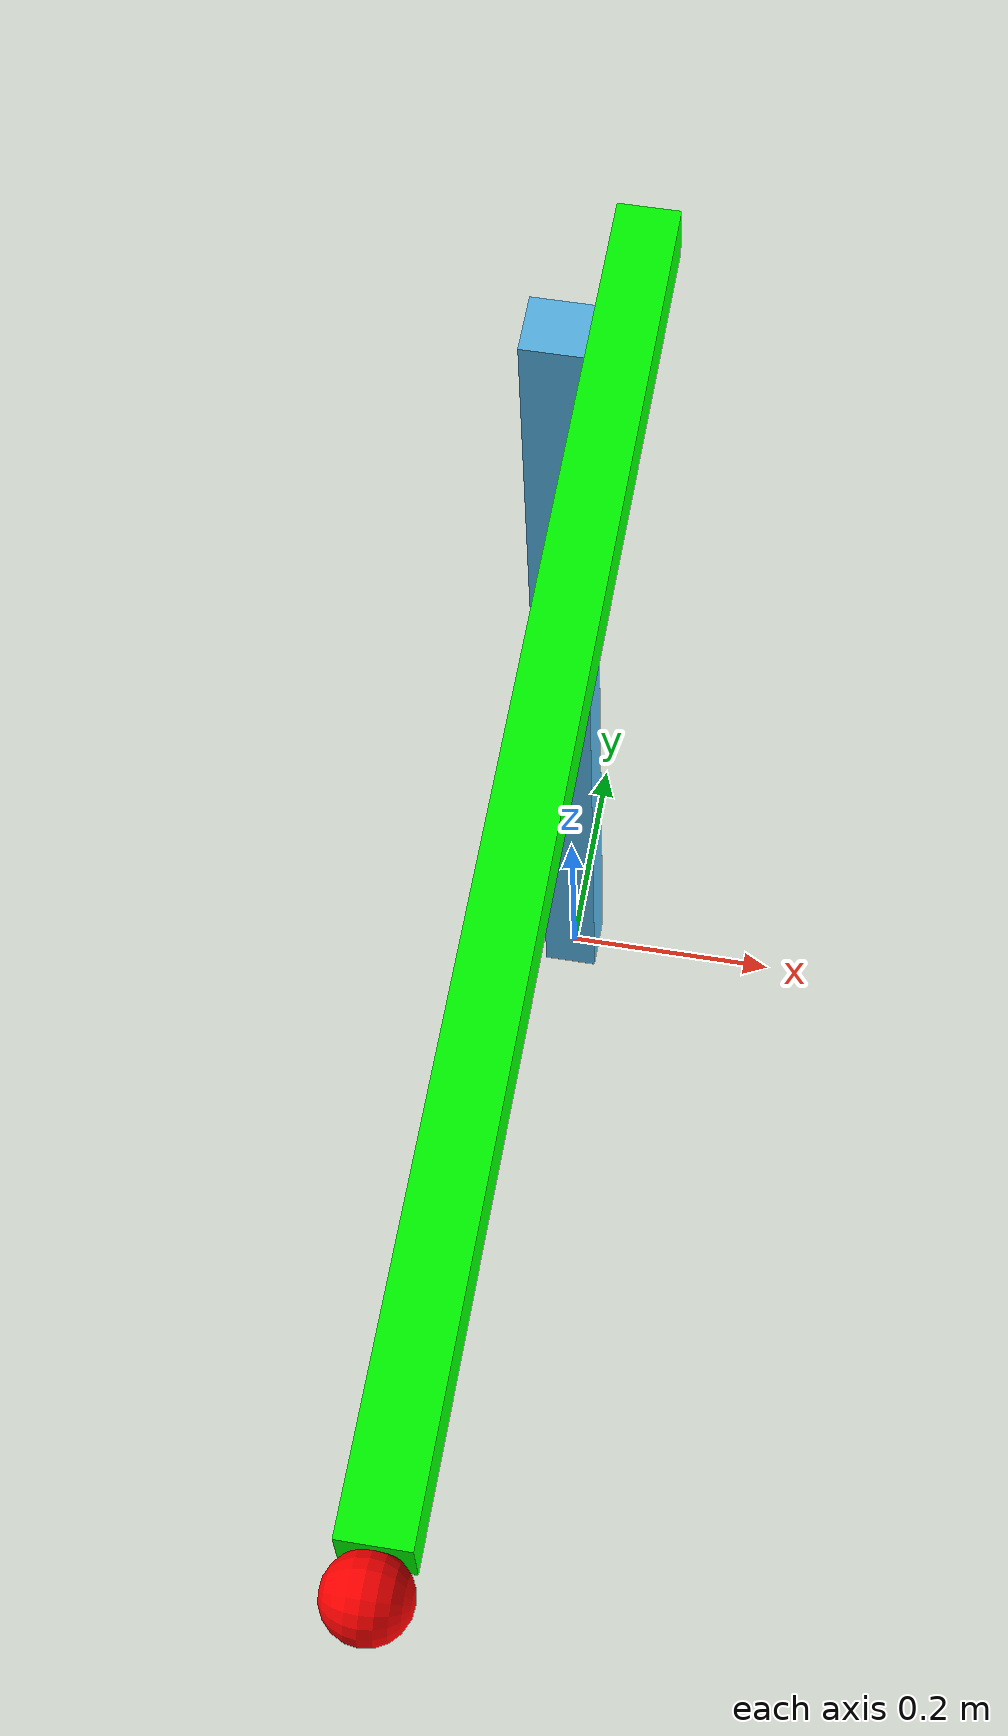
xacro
<?xml version="1.0"?>
<robot name="two_dof_robot" xmlns:xacro="http://ros.org/wiki/xacro">

  <!-- Base Link -->
  <link name="base"/>

  <!-- Joint 1 -->
  <joint name="joint1" type="revolute">
    <parent link="base"/>
    <child link="link1"/>
    <origin xyz="0 0 0.5" rpy="0 0 0"/>
    <axis xyz="0 0 1"/>
    <limit lower="-3.14" upper="3.14" effort="1.0" velocity="1.0"/>
  </joint>

  <!-- Link 1 -->
  <link name="link1">
    <visual>
      <origin xyz="0 0 0.0" rpy="0 0 0"/>
      <geometry>
        <box size="0.05 0.05 1"/>
      </geometry>
    </visual>
  </link>

  <!-- Joint 2 -->
  <joint name="joint2" type="revolute">
    <parent link="link1"/>
    <child link="link2"/>
    <origin xyz="0 0.05 0.525" rpy="0 1.5708 0"/>
    <axis xyz="0 0 1"/>
    <limit lower="-1.57" upper="1.57" effort="1.0" velocity="1.0"/>
  </joint>

  <!-- Link 2 -->
  <link name="link2">
    <visual>
      <origin xyz="0.05 -0.45 0.05" rpy="0 0 1.5708"/>
      <geometry>
        <box size="1.05 0.05 0.05"/>
      </geometry>
      <material name="green">
        <color rgba="0 1 0 1"/>
      </material>
    </visual>
  </link>

  <!-- Joint to End Effector (fixed) -->
  <joint name="joint_ee" type="fixed">
    <parent link="link2"/>
    <child link="end_effector"/>
    <origin xyz="0 0 0" rpy="0 0 0"/> <!-- link2 yüksekliği/2 -->
  </joint>

  <!-- End Effector Link -->
  <link name="end_effector">
    <visual>
      <origin xyz="0.05 -1.0 0.05" rpy="0 0 0"/>
      <geometry>
        <sphere radius="0.03"/>
      </geometry>
      <material name="red">
        <color rgba="1 0 0 1"/>
      </material>
    </visual>
  </link>

</robot>
